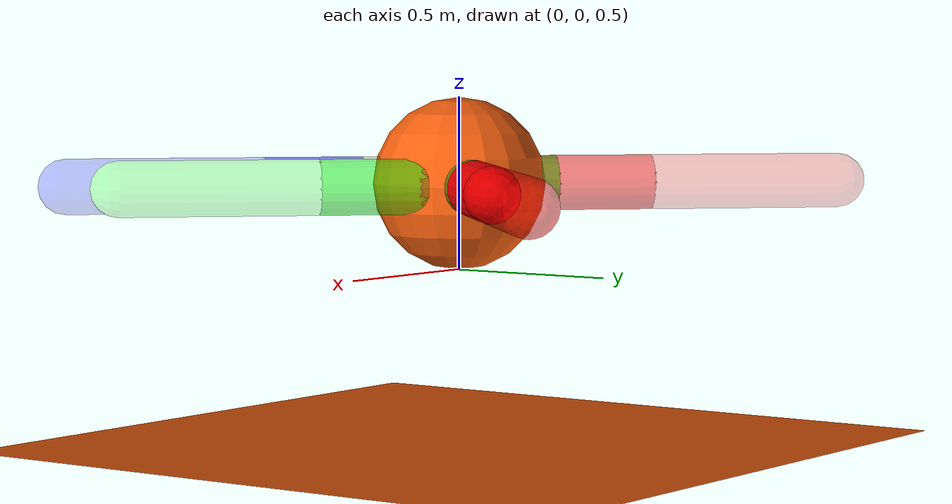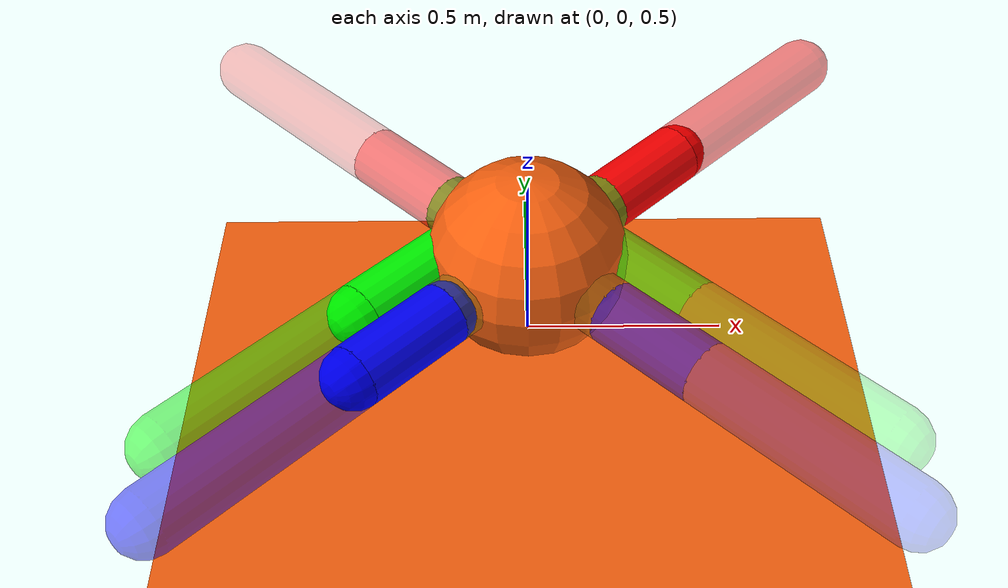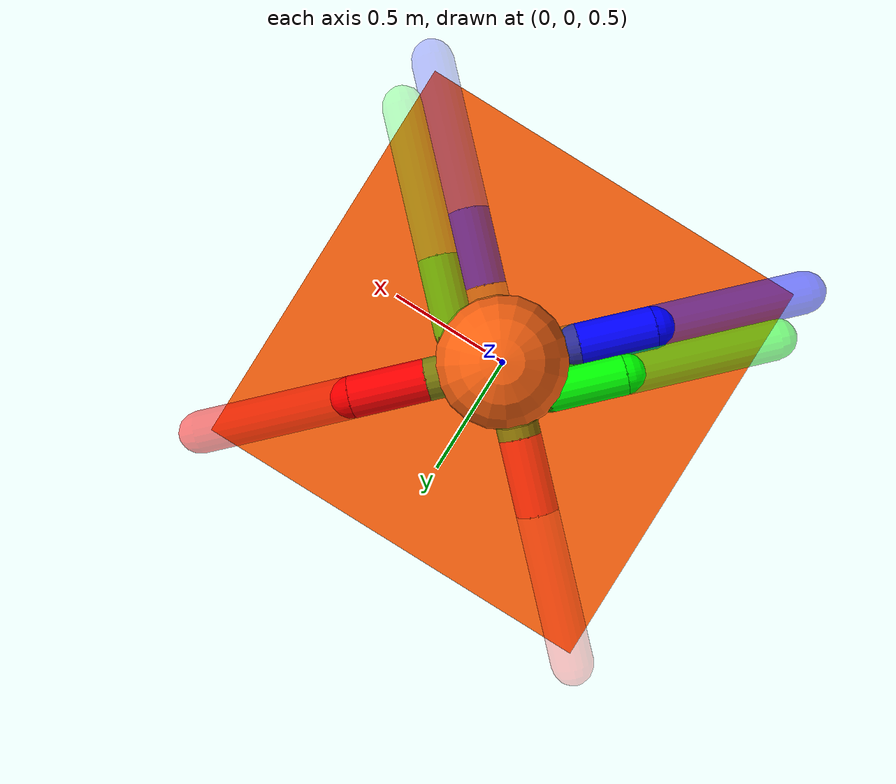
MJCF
<mujoco model="hexapod">
  <custom>
    <numeric data="0.0 0.0 0.55 1.0 0.0 0.0 0.0 0.0 1.0 0.0 -1.0 0.0 -1.0 0.0 1.0" name="init_qpos"/>
  </custom>

  <default>
    <joint armature="0.01" damping="0.1" limited="true"/>
    <geom condim="3" density="5.0" friction="1.5 0.1 0.1" margin="0.01" rgba="0.97 0.38 0.06 1"/>
  </default>

  <compiler inertiafromgeom="true" angle="degree"/>

  <option timestep="0.016" iterations="50" tolerance="1e-10" solver="Newton" jacobian="dense" cone="pyramidal"/>

  <size nconmax="50" njmax="200" nstack="10000"/>
  <visual>
      <map force="0.1" zfar="30"/>
      <rgba haze="0.15 0.25 0.35 1"/>
      <quality shadowsize="2048"/>
      <global offwidth="800" offheight="800"/>
  </visual>

  <asset>
      <texture type="skybox" builtin="gradient" rgb1="0.3 0.5 0.7" rgb2="0 0 0" width="512" height="512"/>
      <texture name="texplane" type="2d" builtin="checker" rgb1=".2 .3 .4" rgb2=".1 0.15 0.2" width="512" height="512" mark="cross" markrgb=".8 .8 .8"/>
      <texture name="texgeom" type="cube" builtin="flat" mark="cross" width="127" height="1278"
          rgb1="0.8 0.6 0.4" rgb2="0.8 0.6 0.4" markrgb="1 1 1" random="0.01"/>

      <material name="matplane" reflectance="0.3" texture="texplane" texrepeat="1 1" texuniform="true"/>
      <material name="matgeom" texture="texgeom" texuniform="true" rgba="0.8 0.6 .4 1"/>
  </asset>

  <worldbody>
    <geom name="floor" pos="0 0 0" size="0 0 .25" type="plane" material="matplane" condim="3"/>

    <light directional="false" diffuse=".2 .2 .2" specular="0 0 0" pos="0 0 5" dir="0 0 -1" castshadow="false"/>
    <light mode="targetbodycom" target="torso" directional="false" diffuse=".8 .8 .8" specular="0.3 0.3 0.3" pos="0 0 4.0" dir="0 0 -1"/>

    <body name="torso" pos="0 0 0.75">
      <freejoint name="root"/>
      <geom name="torso_geom" pos="0 0 0" size="0.25" type="sphere"/>
      <geom fromto="0.0 0.0 0.0  0.2  0.2 0.0" name="aux_1_geom" size="0.08" type="capsule" rgba="0.5 0.5 0.05 1"/>
      <geom fromto="0.0 0.0 0.0 -0.2  0.2 0.0" name="aux_2_geom" size="0.08" type="capsule" rgba="0.5 0.5 0.05 0.85"/>
      <geom fromto="0.0 0.0 0.0 -0.2  0.0 0.0" name="aux_3_geom" size="0.08" type="capsule" rgba="0.5 0.5 0.05 0.70"/>
      <geom fromto="0.0 0.0 0.0  0.2  0.0 0.0" name="aux_4_geom" size="0.08" type="capsule" rgba="0.5 0.5 0.05 0.55"/>
      <geom fromto="0.0 0.0 0.0 -0.2 -0.2 0.0" name="aux_5_geom" size="0.08" type="capsule" rgba="0.5 0.5 0.05 0.40"/>
      <geom fromto="0.0 0.0 0.0  0.2 -0.2 0.0" name="aux_6_geom" size="0.08" type="capsule" rgba="0.5 0.5 0.05 0.25"/>

      <body name="front_left_leg" pos="0.2 0.2 0">
        <joint axis="0 0 1" name="hip_1" pos="0.0 0.0 0.0" range="-40 40" type="hinge"/>
        <geom fromto="0.0 0.0 0.0 0.2 0.2 0.0" name="front_left_leg_geom" size="0.08" type="capsule" rgba="1 0 0 1"/>
        <body pos="0.2 0.2 0" name="front_left_foot">
          <joint axis="-1 1 0" name="ankle_1" pos="0.0 0.0 0.0" range="30 100" type="hinge"/>
          <geom fromto="0.0 0.0 0.0 0.4 0.4 0.0" name="front_left_ankle_geom" size="0.08" type="capsule" rgba="1 0 0 0.5"/>
        </body>
      </body>
      <body name="front_right_leg" pos="-0.2 0.2 0">
        <joint axis="0 0 1" name="hip_2" pos="0.0 0.0 0.0" range="-40 40" type="hinge"/>
        <geom fromto="0.0 0.0 0.0 -0.2 0.2 0.0" name="front_right_leg_geom" size="0.08" type="capsule" rgba="1 0 0 0.5"/>
        <body pos="-0.2 0.2 0" name="front_right_foot">
          <joint axis="1 1 0" name="ankle_2" pos="0.0 0.0 0.0" range="-100 -30" type="hinge"/>
          <geom fromto="0.0 0.0 0.0 -0.4 0.4 0.0" name="front_right_ankle_geom" size="0.08" type="capsule" rgba="1 0 0 0.25"/>
        </body>
      </body>
      <body name="middle_left_leg" pos="-0.2 0.0 0">
        <joint axis="0 0 1" name="hip_3" pos="0.0 0.0 0.0" range="-40 40" type="hinge"/>
        <geom fromto="0.0 0.0 0.0 -0.2 -0.2 0.0" name="middle_left_leg_geom" size="0.08" type="capsule" rgba="0 1 0 1"/>
        <body pos="-0.2 -0.2 0" name="middle_left_foot">
          <joint axis="-1 1 0" name="ankle_3" pos="0.0 0.0 0.0" range="-100 -30" type="hinge"/>
          <geom fromto="0.0 0.0 0.0 -0.4 -0.4 0.0" name="middle_left_ankle_geom" size="0.08" type="capsule" rgba="0 1 0 0.5"/>
        </body>
      </body>
      <body name="middle_right_leg" pos="0.2 0.0 0">
        <joint axis="0 0 1" name="hip_4" pos="0.0 0.0 0.0" range="-40 40" type="hinge"/>
        <geom fromto="0.0 0.0 0.0 0.2 -0.2 0.0" name="middle_right_leg_geom" size="0.08" type="capsule" rgba="0 1 0 0.5"/>
        <body pos="0.2 -0.2 0" name="middle_right_foot">
          <joint axis="1 1 0" name="ankle_4" pos="0.0 0.0 0.0" range="30 100" type="hinge"/>
          <geom fromto="0.0 0.0 0.0 0.4 -0.4 0.0" name="middle_right_ankle_geom" size="0.08" type="capsule" rgba="0 1 0 0.25"/>
        </body>
      </body>
      <body name="back_left_leg" pos="-0.2 -0.2 0">
        <joint axis="0 0 1" name="hip_5" pos="0.0 0.0 0.0" range="-40 40" type="hinge"/>
        <geom fromto="0.0 0.0 0.0 -0.2 -0.2 0.0" name="back_left_leg_geom" size="0.08" type="capsule" rgba="0 0 1 1"/>
        <body pos="-0.2 -0.2 0" name="back_left_foot">
          <joint axis="-1 1 0" name="ankle_5" pos="0.0 0.0 0.0" range="-100 -30" type="hinge"/>
          <geom fromto="0.0 0.0 0.0 -0.4 -0.4 0.0" name="back_left_ankle_geom" size="0.08" type="capsule" rgba="0 0 1 0.5"/>
        </body>
      </body>
      <body name="back_right_leg" pos="0.2 -0.2 0">
        <joint axis="0 0 1" name="hip_6" pos="0.0 0.0 0.0" range="-40 40" type="hinge"/>
        <geom fromto="0.0 0.0 0.0 0.2 -0.2 0.0" name="back_right_leg_geom" size="0.08" type="capsule" rgba="0 0 1 0.5"/>
        <body pos="0.2 -0.2 0" name="back_right_foot">
          <joint axis="1 1 0" name="ankle_6" pos="0.0 0.0 0.0" range="30 100" type="hinge"/>
          <geom fromto="0.0 0.0 0.0 0.4 -0.4 0.0" name="back_right_ankle_geom" size="0.08" type="capsule" rgba="0 0 1 0.25"/>
        </body>
      </body>
    </body>
  </worldbody>

  <actuator>
    <motor ctrllimited="true" ctrlrange="-1.0 1.0" joint="hip_1" gear="15"/>
    <motor ctrllimited="true" ctrlrange="-1.0 1.0" joint="ankle_1" gear="15"/>
    <motor ctrllimited="true" ctrlrange="-1.0 1.0" joint="hip_2" gear="15"/>
    <motor ctrllimited="true" ctrlrange="-1.0 1.0" joint="ankle_2" gear="15"/>
    <motor ctrllimited="true" ctrlrange="-1.0 1.0" joint="hip_3" gear="15"/>
    <motor ctrllimited="true" ctrlrange="-1.0 1.0" joint="ankle_3" gear="15"/>
    <motor ctrllimited="true" ctrlrange="-1.0 1.0" joint="hip_4" gear="15"/>
    <motor ctrllimited="true" ctrlrange="-1.0 1.0" joint="ankle_4" gear="15"/>
    <motor ctrllimited="true" ctrlrange="-1.0 1.0" joint="hip_5" gear="15"/>
    <motor ctrllimited="true" ctrlrange="-1.0 1.0" joint="ankle_5" gear="15"/>
    <motor ctrllimited="true" ctrlrange="-1.0 1.0" joint="hip_6" gear="15"/>
    <motor ctrllimited="true" ctrlrange="-1.0 1.0" joint="ankle_6" gear="15"/>
  </actuator>
</mujoco>
